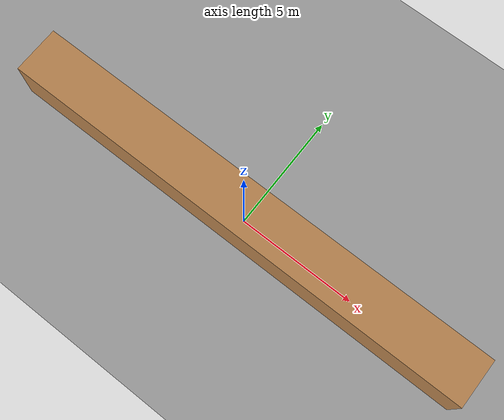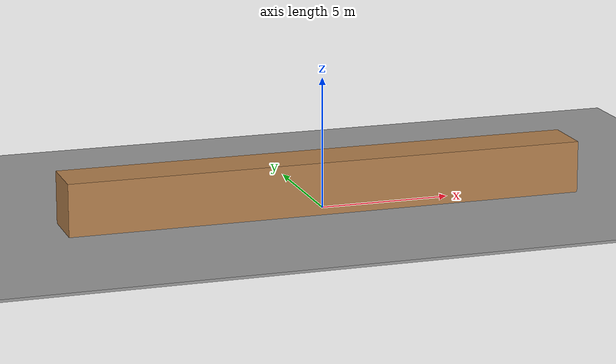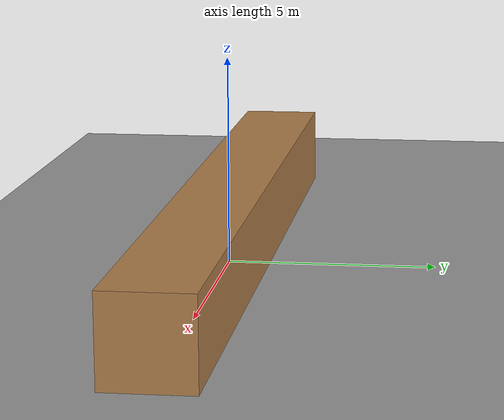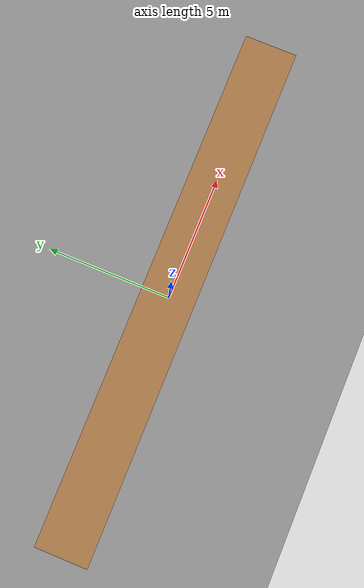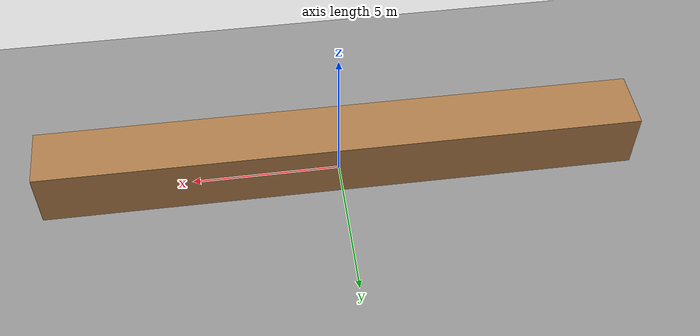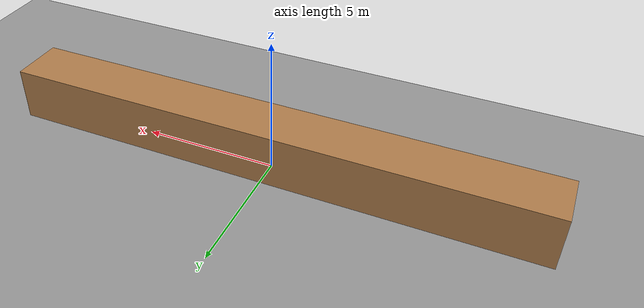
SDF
<?xml version="1.0"?>

<sdf version="1.5">
<world name="origin_block_world">

  <!-- cfm is 1e-5 for single precision -->
  <!-- erp is typically .1-.8 -->
  <!-- here's the global contact cfm/erp -->
  <physics type="ode">
    <gravity>0 0 -9.8</gravity>
    <ode>
      <solver>
        <type>quick</type>
        <iters>10</iters>
        <sor>1.3</sor>
      </solver>
      <constraints>
        <cfm>0.0000000001</cfm>
        <erp>0.2</erp>
        <contact_max_correcting_vel>100.0</contact_max_correcting_vel>
        <contact_surface_layer>0.001</contact_surface_layer>
      </constraints>
    </ode>
  </physics>

  <gui>
  </gui>

  <scene>
    <ambient>0.5 0.5 0.5 0.5</ambient>
    <sky>
    </sky>
    <grid>false</grid>
  </scene>
  <!-- A global light source -->
  <light type="directional" name="sun">
    <cast_shadows>true</cast_shadows>
    <pose>0 0 10 0 0 0</pose>
    <diffuse>0.8 0.8 0.8 1</diffuse>
    <specular>0.2 0.2 0.2 1</specular>
    <attenuation>
      <range>1000</range>
      <constant>0.9</constant>
      <linear>0.01</linear>
      <quadratic>0.001</quadratic>
    </attenuation>
    <direction>-0.5 0.1 -0.9</direction>
  </light>

  <!-- big box at origin -->
  <model name="origin_box_model">
    <pose>0 0 1 0 0 0</pose>
    <static>true</static>
    <link name="origin_box_body">
      <collision name="origin_box_geom_collision">
        <geometry>
          <box>
            <size>20 2 2</size>
          </box>
        </geometry>
      </collision>
      <visual name="origin_box_geom_visual">
        <geometry>
          <box>
            <size>20 2 2</size>
          </box>
        </geometry>
        <material>
          <script>
            <uri>file://media/materials/scripts/gazebo.material</uri>
            <name>Gazebo/LightWood</name>
          </script>
        </material>
      </visual>
    </link>
  </model>

  <!-- ground plane -->
  <model name="gplane">
    <pose>0 0 -0.05 0 0 0</pose>
    <static>true</static>

    <link name="plane">
      <collision name="plane_collision">
        <surface>
          <friction>
            <ode>
              <mu>50.0</mu>
              <mu2>50.0</mu2>
            </ode>
          </friction>
          <contact>
            <ode>
              <kp>1000000000.0</kp>
              <kd>1.0</kd>
            </ode>
          </contact>
        </surface>
        <geometry>
          <box>
            <size>51.3 51.3 0.1</size>
          </box>
        </geometry>
      </collision>
      <visual name="plane_visual">
        <geometry>
          <box>
            <size>51.3 51.3 0.1</size>
          </box>
        </geometry>
        <material>
          <script>
            <uri>file://media/materials/scripts/gazebo.material</uri>
            <name>Gazebo/GrayGrid</name>
          </script>
        </material>
      </visual>
    </link>
  </model>

  <!-- White Point light -->

</world>
</sdf>
